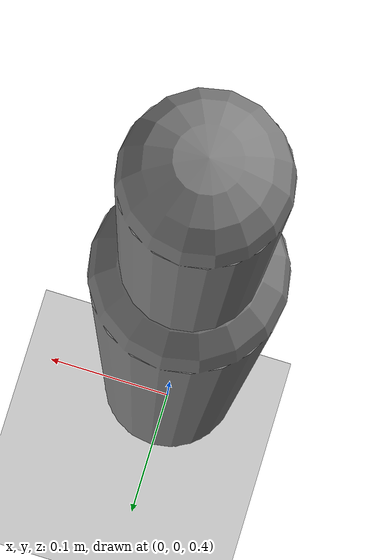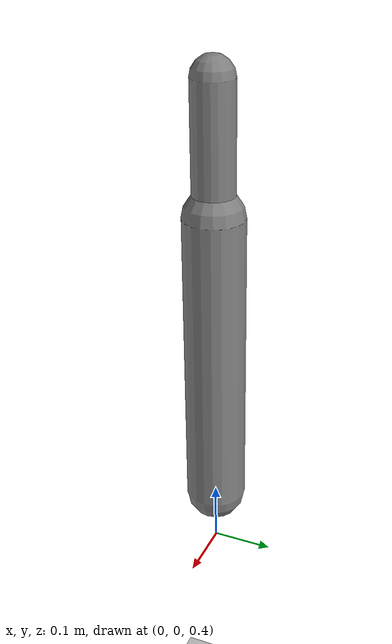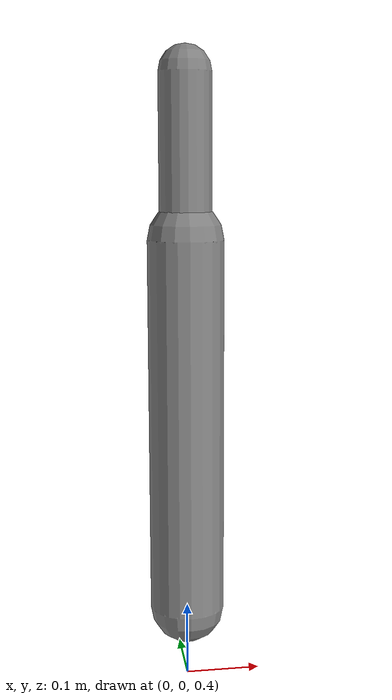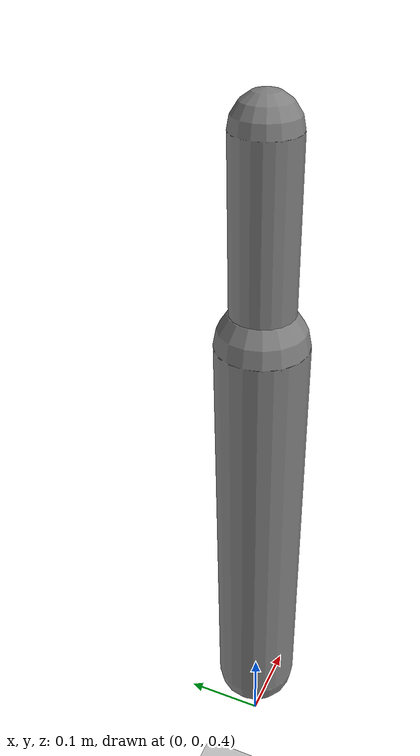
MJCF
<?xml version='1.0' encoding='UTF-8'?>
<mujoco model="RobotModel">
  <option gravity="0 0 -9.81" timestep="0.002" solver="CG" iterations="500" integrator="Euler"/>
  <worldbody>
    <geom name="Floor" type="plane" size="10 10 0.1" pos="0 0 0" rgba="0.8 0.8 0.8 1"/>
    <body name="Limb0" pos="0 0 0.5">
      <geom type="capsule" fromto="0 0 0 0 0 0.5" size="0.05" density="1000" contype="1" conaffinity="1"/>
      <body name="Limb0_5b8f6d26" pos="0 0 0.5">
        <geom type="capsule" fromto="0 0 0 0 0 0.20859497151711792" size="0.034249041874957815" density="800" contype="1" conaffinity="1"/>
        <joint name="Joint_Limb0_Limb0_5b8f6d26_0" type="hinge" axis="1 0 0" range="-60 60"/>
      </body>
    </body>
  </worldbody>
  <actuator>
    <position name="position_Actuator_Joint_Limb0_Limb0_5b8f6d26_0" joint="Joint_Limb0_Limb0_5b8f6d26_0" gear="1.0"/>
  </actuator>
</mujoco>
